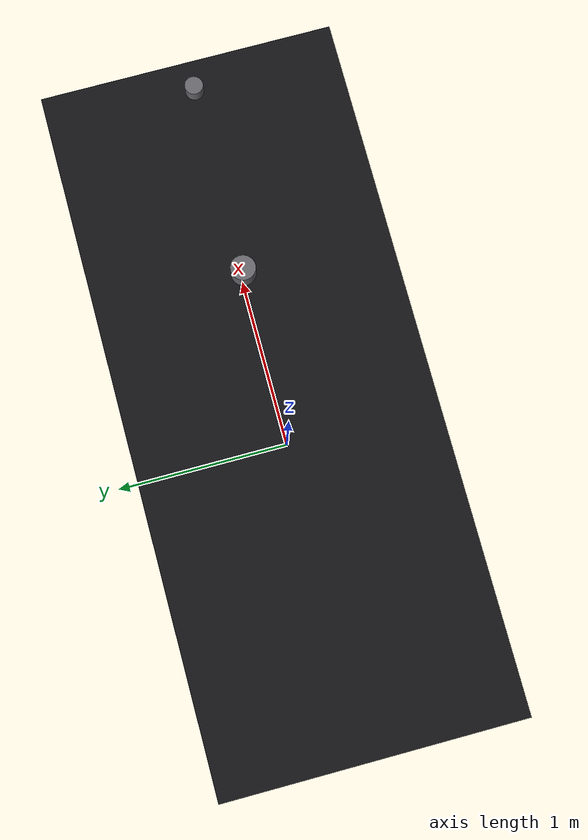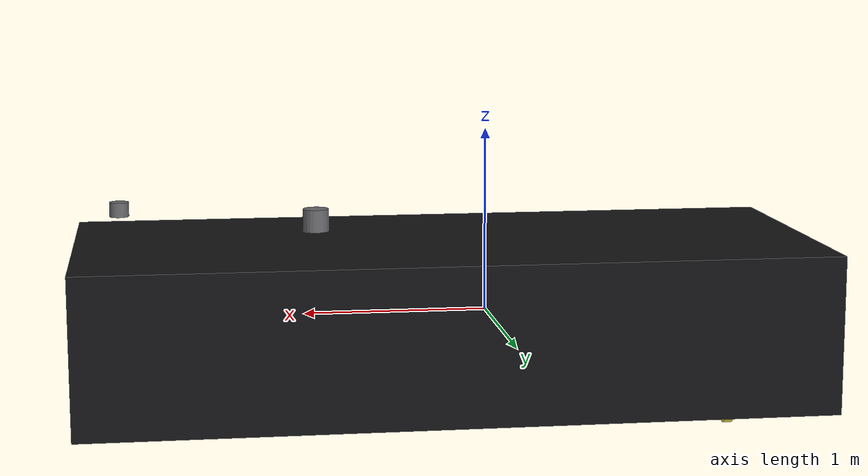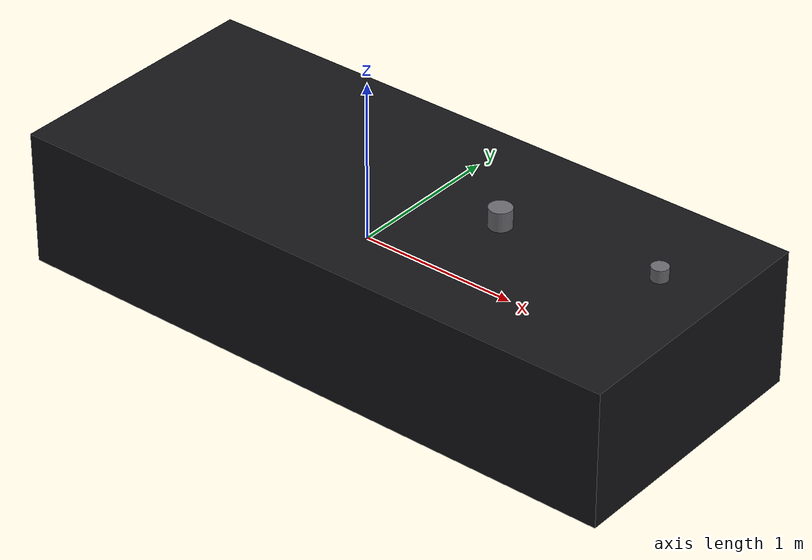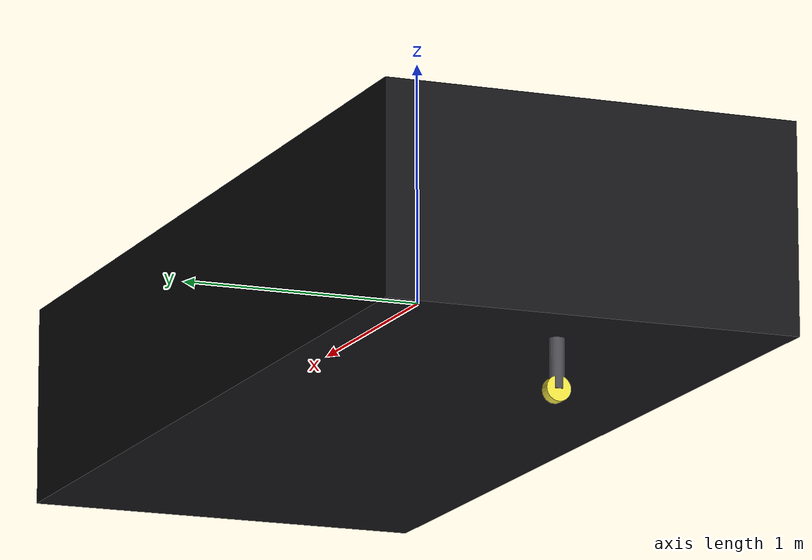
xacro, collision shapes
<?xml version="1.0"?>
<robot xmlns:xacro="http://ros.org/wiki/xacro" name="my_boat">

  <!-- Namespace used for the link name and plugin link references. Keep the
       spawn -name equal to this so USVWind's scoped link match works. -->
  <xacro:arg name="namespace" default="my_boat"/>
  <xacro:property name="namespace" value="$(arg namespace)" scope="global"/>

  <xacro:arg name="d1"   default="1.40"/>
  <xacro:arg name="d2"   default="0.90"/>
  <xacro:arg name="d3"   default="1.40"/>
  <xacro:arg name="p1_y" default="0.00"/>
  <xacro:property name="d1"   value="$(arg d1)"   scope="global"/>
  <xacro:property name="d2"   value="$(arg d2)"   scope="global"/>
  <xacro:property name="d3"   value="$(arg d3)"   scope="global"/>
  <xacro:property name="p1_y" value="$(arg p1_y)" scope="global"/>

  <!-- Bring in the boat + marine plugins + v2 propulsion macro, instantiate. -->
  <xacro:include filename="$(find my_boat_gazebo)/urdf/my_boat_gazebo_v2.xacro"/>
  <xacro:my_boat_gazebo_v2/>

  <!-- === TF / state publishing (identical to v1) === -->
  <gazebo>
    <plugin filename="libgz-sim-pose-publisher-system.so"
            name="gz::sim::systems::PosePublisher">
      <publish_link_pose>false</publish_link_pose>
      <publish_sensor_pose>false</publish_sensor_pose>
      <publish_collision_pose>false</publish_collision_pose>
      <publish_visual_pose>false</publish_visual_pose>
      <publish_nested_model_pose>false</publish_nested_model_pose>
      <publish_model_pose>true</publish_model_pose>
      <use_pose_vector_msg>true</use_pose_vector_msg>
      <static_publisher>false</static_publisher>
      <static_update_frequency>1</static_update_frequency>
    </plugin>

    <plugin filename="libgz-sim-joint-state-publisher-system.so"
            name="gz::sim::systems::JointStatePublisher">
    </plugin>
  </gazebo>

</robot>

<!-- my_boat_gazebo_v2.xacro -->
<robot xmlns:xacro="http://ros.org/wiki/xacro">
  <!-- Marine dynamics macro (Surface + SimpleHydrodynamics). -->
  <xacro:include filename="$(find my_boat_gazebo)/urdf/dynamics/my_boat_gazebo_dynamics_plugin.xacro"/>
  <!-- Propulsion arrangement v2: T1/T2 centreline laterals + P1 stern prop. -->
  <xacro:include filename="$(find my_boat_gazebo)/urdf/thrusters/my_boat_thruster_layout_v2.xacro"/>
  <!-- IMU + GPS + LiDAR + camera sensor stack (identical to v1). -->
  <xacro:include filename="$(find my_boat_gazebo)/urdf/sensors/my_boat_sensors.xacro"/>

  <xacro:macro name="my_boat_gazebo_v2">
    <!-- The pure rigid body (CG-centred base_link, mesh, inertia). -->
    <xacro:include filename="$(find my_boat_description)/urdf/my_boat_base.urdf.xacro"/>
    <!-- Attach buoyancy + hydrodynamics. -->
    <xacro:usv_dynamics_gazebo name="my_boat_dynamics_plugin"/>
    <!-- IMU + GPS + LiDAR + camera (via fixed joints). -->
    <xacro:my_boat_sensors/>
  </xacro:macro>
</robot>

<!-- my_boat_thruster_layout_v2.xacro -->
<robot xmlns:xacro="http://ros.org/wiki/xacro" name="my_boat_thruster_layout_v2">

  <xacro:include filename="$(find my_boat_gazebo)/urdf/thrusters/my_boat_engine_v2.xacro"/>
  <!-- Physics macros are shared with v1 (thruster_force); steering_actuator is
       defined there too but deliberately NOT used — v2 has nothing to steer. -->
  <xacro:include filename="$(find my_boat_gazebo)/urdf/thrusters/my_boat_thruster_config.xacro"/>

  <!-- ===================== Mounting depths (base_link / CG frame) ========= -->
  <!-- Lateral thrusters: 0.23 m below the CG, same as the v1 bow tunnels. -->
  <xacro:property name="lat_z"        value="-0.23"/>
  <!-- Stern leg: hull mount 0.25 m below the CG, 0.40 m strut -> prop z=-0.65. -->
  <xacro:property name="p1_mount_z"   value="-0.25"/>
  <xacro:property name="p1_prop_drop" value="0.40"/>

  <!-- ===================== Hardware thrust limits (N) ===================== -->
  <xacro:property name="lat_max_thrust"   value="98.0"/>   <!-- APISQUEEN U92 Pro, 10 kgf -->
  <xacro:property name="stern_max_thrust" value="632.0"/>  <!-- Torqeedo Cruise 3.0 R -->

  <!-- ======================= T1: forward lateral ========================== -->
  <!-- yaw +90 deg: positive command thrusts +Y (port); lever +d1 -> +N -->
  <xacro:lateral_thruster prefix="T1" x="${d1}" y="0.0" z="${lat_z}" yaw="1.5708"/>
  <xacro:thruster_force name="T1" joint_name="T1_propeller_joint"
                        max_thrust="${lat_max_thrust}"/>

  <!-- ========================= T2: aft lateral ============================ -->
  <!-- yaw +90 deg: positive command thrusts +Y (port); lever -d2 -> -N -->
  <xacro:lateral_thruster prefix="T2" x="${-d2}" y="0.0" z="${lat_z}" yaw="1.5708"/>
  <xacro:thruster_force name="T2" joint_name="T2_propeller_joint"
                        max_thrust="${lat_max_thrust}"/>

  <!-- ==================== P1: fixed stern propeller ======================= -->
  <!-- yaw 180 deg: prop faces -X so positive command thrusts +X (forward).
       No steering joint and therefore no steering_actuator plugin. -->
  <xacro:stern_propeller prefix="P1" x="${-d3}" y="${p1_y}" z="${p1_mount_z}"
                         yaw="3.1416" prop_drop="${p1_prop_drop}"/>
  <xacro:thruster_force name="P1" joint_name="P1_propeller_joint"
                        max_thrust="${stern_max_thrust}"/>

</robot>

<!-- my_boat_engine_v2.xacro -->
<robot xmlns:xacro="http://ros.org/wiki/xacro" name="my_boat_engine_v2">

  <xacro:macro name="lateral_thruster" params="prefix x y z yaw">

    <!-- Propeller: visual = reused WAM-V propeller.dae; spins about local X and
         the plugin applies thrust along that same axis. -->
    <link name="${namespace}/${prefix}_propeller_link">
      <visual>
        <!-- propeller.dae faces / spins about its local X (no extra rotation) -->
        <origin xyz="0 0 0" rpy="0 0 0"/>
        <geometry>
          <mesh filename="model://propeller/mesh/propeller.dae" scale="0.42 0.42 0.42"/>
        </geometry>
      </visual>
      <collision name="${prefix}_propeller_collision">
        <!-- thin disc whose normal is local X (cylinder axis laid along X) -->
        <origin xyz="0 0 0" rpy="0 1.5708 0"/>
        <geometry>
          <cylinder radius="0.06" length="0.04"/>
        </geometry>
      </collision>
      <inertial>
        <!-- whole U92 Pro pod, lumped into the propeller: m=2.5 kg,
             solid cylinder r=0.06, L=0.10 about its own (X) axis -->
        <mass value="2.5"/>
        <inertia ixx="0.0045" iyy="0.00433" izz="0.00433"
                 ixy="0.0" ixz="0.0" iyz="0.0"/>
      </inertial>
    </link>

    <!-- base_link -> propeller (continuous). Origin = station + mount yaw; axis
         is local X (= the aimed lateral thrust direction). -->
    <joint name="${namespace}/${prefix}_propeller_joint" type="continuous">
      <origin xyz="${x} ${y} ${z}" rpy="0 0 ${yaw}"/>
      <axis xyz="1 0 0"/>
      <parent link="${namespace}/base_link"/>
      <child  link="${namespace}/${prefix}_propeller_link"/>
      <limit effort="100" velocity="200"/>
      <dynamics friction="0.0" damping="0.01"/>
    </joint>

  </xacro:macro>

  <xacro:macro name="stern_propeller" params="prefix x y z yaw:='3.1416' prop_drop:='0.40'">

    <!-- Fixed leg: a single vertical shaft CYLINDER (dia 0.05 m) from the hull
         mount down to the propeller depth. Rigid — nothing rotates it. -->
    <link name="${namespace}/${prefix}_strut_link">
      <visual name="${prefix}_strut_visual">
        <origin xyz="0 0 ${-prop_drop/2}" rpy="0 0 0"/>
        <geometry>
          <cylinder radius="0.025" length="${prop_drop}"/>
        </geometry>
        <material name="strut_grey"><color rgba="0.3 0.3 0.32 1.0"/></material>
      </visual>
      <collision name="${prefix}_strut_collision">
        <origin xyz="0 0 ${-prop_drop/2}" rpy="0 0 0"/>
        <geometry>
          <cylinder radius="0.03" length="${prop_drop}"/>
        </geometry>
      </collision>
      <inertial>
        <!-- leg ~12 kg (bracket + leg + motor), centred ~halfway down -->
        <origin xyz="0 0 ${-prop_drop/2}" rpy="0 0 0"/>
        <mass value="12.0"/>
        <inertia ixx="0.6" iyy="0.6" izz="0.05" ixy="0" ixz="0" iyz="0"/>
      </inertial>
    </link>

    <link name="${namespace}/${prefix}_propeller_link">
      <visual>
        <origin xyz="0 0 0" rpy="0 0 0"/>
        <geometry>
          <mesh filename="model://propeller/mesh/propeller.dae" scale="0.42 0.42 0.42"/>
        </geometry>
      </visual>
      <collision name="${prefix}_propeller_collision">
        <!-- thin disc, normal along local X (cylinder axis laid along X) -->
        <origin xyz="0 0 0" rpy="0 1.5708 0"/>
        <geometry>
          <!-- Torqeedo prop, dia 0.10 m -->
          <cylinder radius="0.05" length="0.05"/>
        </geometry>
      </collision>
      <inertial>
        <!-- m=1.0 kg, solid cylinder r=0.05, L=0.05 about its own (X) axis -->
        <mass value="1.0"/>
        <inertia ixx="0.00125" iyy="0.000833" izz="0.000833"
                 ixy="0.0" ixz="0.0" iyz="0.0"/>
      </inertial>
    </link>

    <!-- base_link -> leg (RIGID). This is where the v1 steering joint used to
         be; in v2 it is welded. Aimed by 'yaw' so the prop faces aft. -->
    <joint name="${namespace}/${prefix}_mount_joint" type="fixed">
      <origin xyz="${x} ${y} ${z}" rpy="0 0 ${yaw}"/>
      <parent link="${namespace}/base_link"/>
      <child  link="${namespace}/${prefix}_strut_link"/>
    </joint>

    <joint name="${namespace}/${prefix}_propeller_joint" type="continuous">
      <origin xyz="0 0 ${-prop_drop}" rpy="0 0 0"/>
      <axis xyz="-1 0 0"/>
      <parent link="${namespace}/${prefix}_strut_link"/>
      <child  link="${namespace}/${prefix}_propeller_link"/>
      <limit effort="500" velocity="200"/>
      <dynamics friction="0.0" damping="0.01"/>
    </joint>

  </xacro:macro>

</robot>

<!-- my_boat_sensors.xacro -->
<robot xmlns:xacro="http://ros.org/wiki/xacro" name="my_boat_sensors">

  <xacro:macro name="zero_noise">
    <noise type="gaussian">
      <mean>0.0</mean>
      <stddev>0.0</stddev>
      <bias_mean>0.0</bias_mean>
      <bias_stddev>0.0</bias_stddev>
      <dynamic_bias_stddev>0.0</dynamic_bias_stddev>
      <dynamic_bias_correlation_time>0.0</dynamic_bias_correlation_time>
      <precision>0.0</precision>
    </noise>
  </xacro:macro>

  <xacro:property name="m_per_deg"    value="111320.0"/>   <!-- metres per degree of latitude (GPS sets only) -->
  <xacro:property name="imu_bias_tau" value="500.0"/>      <!-- [s] IMU bias correlation time; only has an effect when a set with non-zero dyn_bias is active (set to 1000 for set A) -->

  <xacro:property name="gyro_stddev"   value="1.4544e-4"/>
  <xacro:property name="gyro_bias"     value="2.4241e-6"/>
  <xacro:property name="gyro_dyn_bias" value="1.0841e-7"/>
  <xacro:property name="acc_stddev"    value="5.0000e-3"/>
  <xacro:property name="acc_bias"      value="1.9613e-4"/>
  <xacro:property name="acc_dyn_bias"  value="8.7713e-6"/>
  <xacro:property name="gps_pos_h"     value="${0.010/m_per_deg}"/>
  <xacro:property name="gps_pos_v"     value="0.020"/>
  <xacro:property name="gps_vel_h"     value="0.030"/>
  <xacro:property name="gps_vel_v"     value="0.050"/>

  <xacro:macro name="gauss_noise"
               params="stddev:=0.0 bias:=0.0 dyn_bias:=0.0 dyn_tau:=0.0 prec:=0.0 mean:=0.0">
    <noise type="gaussian">
      <mean>${mean}</mean>
      <stddev>${stddev}</stddev>
      <bias_mean>0.0</bias_mean>
      <bias_stddev>${bias}</bias_stddev>
      <dynamic_bias_stddev>${dyn_bias}</dynamic_bias_stddev>
      <dynamic_bias_correlation_time>${dyn_tau}</dynamic_bias_correlation_time>
      <precision>${prec}</precision>
    </noise>
  </xacro:macro>

  <xacro:macro name="my_boat_imu" params="name:=imu x y z R:=0 P:=0 Y:=0 update_rate:=100">
    <link name="${namespace}/${name}_link">
      <visual name="${name}_visual">
        <geometry>
          <box size="0.05 0.025 0.005"/>
        </geometry>
        <material name="${name}_material">
          <color rgba="0.45 0.45 0.47 1.0"/>
        </material>
      </visual>
      <collision name="${name}_collision">
        <geometry>
          <box size="0.05 0.025 0.005"/>
        </geometry>
      </collision>
      <inertial>
        <mass value="0.1"/>
        <inertia ixx="0.00000542" ixy="0.0" ixz="0.0"
                 iyy="0.00002104" iyz="0.0" izz="0.00002604"/>
      </inertial>
    </link>

    <joint name="${namespace}/${name}_joint" type="fixed">
      <origin xyz="${x} ${y} ${z}" rpy="${R} ${P} ${Y}"/>
      <parent link="${namespace}/base_link"/>
      <child  link="${namespace}/${name}_link"/>
    </joint>

    <gazebo reference="${namespace}/${name}_link">
      <sensor name="${name}_sensor" type="imu">
        <always_on>1</always_on>
        <update_rate>${update_rate}</update_rate>
        <topic>/${namespace}/${name}/data</topic>
        <gz_frame_id>${namespace}/${name}_link</gz_frame_id>
        <imu>
          <orientation_reference_frame>
            <localization>ENU</localization>
          </orientation_reference_frame>
          <angular_velocity>
            <x><xacro:gauss_noise stddev="${gyro_stddev}" bias="${gyro_bias}" dyn_bias="${gyro_dyn_bias}" dyn_tau="${imu_bias_tau}"/></x>
            <y><xacro:gauss_noise stddev="${gyro_stddev}" bias="${gyro_bias}" dyn_bias="${gyro_dyn_bias}" dyn_tau="${imu_bias_tau}"/></y>
            <z><xacro:gauss_noise stddev="${gyro_stddev}" bias="${gyro_bias}" dyn_bias="${gyro_dyn_bias}" dyn_tau="${imu_bias_tau}"/></z>
          </angular_velocity>
          <linear_acceleration>
            <x><xacro:gauss_noise stddev="${acc_stddev}" bias="${acc_bias}" dyn_bias="${acc_dyn_bias}" dyn_tau="${imu_bias_tau}"/></x>
            <y><xacro:gauss_noise stddev="${acc_stddev}" bias="${acc_bias}" dyn_bias="${acc_dyn_bias}" dyn_tau="${imu_bias_tau}"/></y>
            <z><xacro:gauss_noise stddev="${acc_stddev}" bias="${acc_bias}" dyn_bias="${acc_dyn_bias}" dyn_tau="${imu_bias_tau}"/></z>
          </linear_acceleration>
        </imu>
      </sensor>
    </gazebo>
  </xacro:macro>

  <xacro:macro name="my_boat_gps" params="name:=gps x y z R:=0 P:=0 Y:=0 update_rate:=10">
    <link name="${namespace}/${name}_link">
      <visual name="${name}_base_visual">
        <origin xyz="0 0 0.025" rpy="0 0 0"/>
        <geometry>
          <cylinder length="0.05" radius="0.015"/>
        </geometry>
        <material name="${name}_material">
          <color rgba="0.42 0.42 0.44 1.0"/>
        </material>
      </visual>
      <visual name="${name}_antenna_visual">
        <origin xyz="0 0 0.11" rpy="0 0 0"/>
        <geometry>
          <cylinder length="0.04" radius="0.07"/>
        </geometry>
        <material name="${name}_antenna_material">
          <color rgba="0.72 0.72 0.74 1.0"/>
        </material>
      </visual>
      <collision name="${name}_collision">
        <origin xyz="0 0 0.06" rpy="0 0 0"/>
        <geometry>
          <cylinder length="0.12" radius="0.07"/>
        </geometry>
      </collision>
      <inertial>
        <mass value="1.0"/>
        <inertia ixx="0.006458" ixy="0.0" ixz="0.0"
                 iyy="0.006458" iyz="0.0" izz="0.01125"/>
      </inertial>
    </link>

    <joint name="${namespace}/${name}_joint" type="fixed">
      <origin xyz="${x} ${y} ${z}" rpy="${R} ${P} ${Y}"/>
      <parent link="${namespace}/base_link"/>
      <child  link="${namespace}/${name}_link"/>
    </joint>

    <gazebo reference="${namespace}/${name}_link">
      <sensor name="${name}_sensor" type="navsat">
        <always_on>1</always_on>
        <update_rate>${update_rate}</update_rate>
        <topic>/${namespace}/${name}/fix</topic>
        <!-- Stamp with the link frame (in the TF tree) so navsat_transform can
             apply the antenna offset. Matches the lidar sensor below. -->
        <gz_frame_id>${namespace}/${name}_link</gz_frame_id>
        <navsat>
          <position_sensing>
            <horizontal><xacro:gauss_noise stddev="${gps_pos_h}"/></horizontal>
            <vertical><xacro:gauss_noise stddev="${gps_pos_v}"/></vertical>
          </position_sensing>
          <velocity_sensing>
            <horizontal><xacro:gauss_noise stddev="${gps_vel_h}"/></horizontal>
            <vertical><xacro:gauss_noise stddev="${gps_vel_v}"/></vertical>
          </velocity_sensing>
        </navsat>
      </sensor>
    </gazebo>
  </xacro:macro>

  <xacro:macro name="my_boat_lidar"
               params="name:=lidar x y z R:=0 P:=0 Y:=0 update_rate:=10
                       h_samples:=1800 v_samples:=32
                       h_min:=${-pi} h_max:=${pi}
                       v_min_deg:=-16 v_max_deg:=15
                       min_range:=0.3 max_range:=130 range_res:=0.01">
    <link name="${namespace}/${name}_link">
      <visual name="${name}_visual">
        <geometry>
          <cylinder radius="0.051" length="0.0779"/>  <!-- LSLiDAR C32: Ø102 mm x 77.9 mm -->

        </geometry>
        <material name="${name}_material">
          <color rgba="0.42 0.42 0.44 1.0"/>
        </material>
      </visual>
      <collision name="${name}_collision">
        <geometry>
          <cylinder radius="0.051" length="0.0779"/>  <!-- LSLiDAR C32: Ø102 mm x 77.9 mm -->

        </geometry>
      </collision>
      <inertial>
        <mass value="0.84"/>   <!-- LSLiDAR C32 ~ 0.84 kg -->
        <!-- Solid-cylinder inertia for r=0.051 m, h=0.0779 m, m=0.84 kg:
             Ixx=Iyy=(1/12)m(3r^2+h^2)=0.00097, Izz=(1/2)m r^2=0.00109. -->
        <inertia ixx="0.00097" ixy="0.0" ixz="0.0"
                 iyy="0.00097" iyz="0.0" izz="0.00109"/>
      </inertial>
    </link>

    <joint name="${namespace}/${name}_joint" type="fixed">
      <origin xyz="${x} ${y} ${z}" rpy="${R} ${P} ${Y}"/>
      <parent link="${namespace}/base_link"/>
      <child  link="${namespace}/${name}_link"/>
    </joint>

    <gazebo reference="${namespace}/${name}_link">
      <sensor name="${name}_sensor" type="gpu_lidar">
        <always_on>1</always_on>
        <update_rate>${update_rate}</update_rate>
        <topic>/${namespace}/${name}</topic>
        <gz_frame_id>${namespace}/${name}_link</gz_frame_id>
        <lidar>
          <scan>
            <horizontal>
              <samples>${h_samples}</samples>
              <resolution>1</resolution>
              <min_angle>${h_min}</min_angle>
              <max_angle>${h_max}</max_angle>
            </horizontal>
            <vertical>
              <samples>${v_samples}</samples>
              <resolution>1</resolution>
              <min_angle>${radians(v_min_deg)}</min_angle>
              <max_angle>${radians(v_max_deg)}</max_angle>
            </vertical>
          </scan>
          <range>
            <min>${min_range}</min>
            <max>${max_range}</max>
            <resolution>${range_res}</resolution>
          </range>
          <noise>
            <type>gaussian</type>
            <mean>0.0</mean>
            <stddev>0.0</stddev>
          </noise>
        </lidar>
      </sensor>
    </gazebo>
  </xacro:macro>

  <xacro:macro name="my_boat_camera"
               params="name:=camera parent:=${namespace}/lidar_link
                       x:=0.09635  y:=0.0       z:=-0.05845
                       R:=0        P:=0         Y:=0
                       update_rate:=30">
    <link name="${namespace}/${name}_link">
      <visual name="${name}_visual">
        <geometry>
          <box size="0.0273 0.082 0.025"/>  <!-- measured: X 2.73 x Y 8.2 x Z 2.5 cm -->
        </geometry>
        <material name="${name}_material">
          <color rgba="0.45 0.45 0.47 1.0"/>
        </material>
      </visual>
      <collision name="${name}_collision">
        <geometry>
          <box size="0.0273 0.082 0.025"/>  <!-- measured: X 2.73 x Y 8.2 x Z 2.5 cm -->
        </geometry>
      </collision>
      <inertial>
        <mass value="0.05"/>
        <!-- Solid-box inertia for 0.0273 x 0.082 x 0.025 m, m=0.05 kg. -->
        <inertia ixx="3.06e-5" ixy="0.0" ixz="0.0"
                 iyy="5.71e-6" iyz="0.0" izz="3.11e-5"/>
      </inertial>
    </link>

    <!-- Mounted ON the lidar (parent = lidar_link); origin = measured offset. -->
    <joint name="${namespace}/${name}_joint" type="fixed">
      <origin xyz="${x} ${y} ${z}" rpy="${R} ${P} ${Y}"/>
      <parent link="${parent}"/>
      <child  link="${namespace}/${name}_link"/>
    </joint>

    <!-- ROS optical frame (x-right, y-down, z-fwd) for camera_info / projection. -->
    <link name="${namespace}/${name}_optical_link"/>
    <joint name="${namespace}/${name}_optical_joint" type="fixed">
      <origin xyz="0 0 0" rpy="${-pi/2} 0 ${-pi/2}"/>
      <parent link="${namespace}/${name}_link"/>
      <child  link="${namespace}/${name}_optical_link"/>
    </joint>

    <gazebo reference="${namespace}/${name}_link">
      <sensor name="${name}_sensor" type="camera">
        <always_on>1</always_on>
        <update_rate>${update_rate}</update_rate>
        <topic>/${namespace}/${name}</topic>
        <!-- Stamp image / camera_info in the optical frame (ROS convention). -->
        <gz_frame_id>${namespace}/${name}_optical_link</gz_frame_id>
        <camera>
          <horizontal_fov>1.191581</horizontal_fov>   <!-- 2*atan(W/2fx), W=640 fx=471.99 -->
          <image>
            <width>640</width>
            <height>480</height>
            <format>R8G8B8</format>
          </image>
          <clip>
            <near>0.05</near>
            <far>300.0</far>
          </clip>
          <!-- plumb_bob / Brown-Conrady distortion (intrenstic_param.txt).
               center = (cx/W, cy/H). -->
          <distortion>
            <k1>0.095652</k1>
            <k2>-0.140237</k2>
            <k3>0.0</k3>
            <p1>0.003701</p1>
            <p2>0.002291</p2>
            <center>0.49990 0.49686</center>
          </distortion>
          <!-- Exact pinhole intrinsics (gz honours these for non-square pixels
               and writes them into the published camera_info). -->
          <lens>
            <intrinsics>
              <fx>471.993854</fx>
              <fy>475.737131</fy>
              <cx>319.937646</cx>
              <cy>238.490867</cy>
              <s>0.0</s>
            </intrinsics>
          </lens>
        </camera>
      </sensor>
    </gazebo>
  </xacro:macro>

  <xacro:macro name="my_boat_sensors">
    <xacro:my_boat_imu   name="imu"   x="1.30" y="0.08" z="-0.07"/>
    <xacro:my_boat_gps   name="gps"   x="0.93" y="0.00" z="0.46"/>
    <!-- z = 0.59995: lidar BOTTOM measured 56.1 cm above base_link/COM,
         + half the C32 height (0.0779/2 = 0.03895) to the cylinder centre. -->
    <xacro:my_boat_lidar name="lidar" x="1.98" y="0.00" z="0.59995"/>
    <!-- Camera is placed w.r.t the lidar (parent = lidar_link), so it must be
         instantiated after the lidar. -->
    <xacro:my_boat_camera name="camera"/>
  </xacro:macro>

</robot>

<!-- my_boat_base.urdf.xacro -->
<robot xmlns:xacro="http://ros.org/wiki/xacro" name="my_boat">

  <!-- Namespace arg (kept for parity with wamv_base.urdf.xacro). -->
  <xacro:arg name="namespace" default="my_boat"/>
  <xacro:property name="namespace" value="$(arg namespace)" scope="global"/>

  <xacro:property name="boat_mass" value="420.0"/>          <!-- kg -->

  <!-- Centre of gravity in the CAD/STL frame (millimetres). base_link is
       placed here. Defaults = hull volume centroid (Y matches the report). -->
  <xacro:property name="cg_x_mm" value="924.5"/>            <!-- CAD X lateral      -->
  <xacro:property name="cg_y_mm" value="491.6"/>            <!-- CAD Y vertical     -->
  <xacro:property name="cg_z_mm" value="2314.5"/>           <!-- CAD Z longitudinal -->

  <xacro:property name="mesh_scale" value="0.001"/>
  <xacro:property name="mesh_rpy"   value="1.5708 0 -1.5708"/>  <!-- +Rz(pi) flip -->
  <!-- xyz = Rz(pi) * (-R*scale*CG) -> ROS x & y negated, z unchanged -->
  <xacro:property name="mesh_off_x" value="${ cg_z_mm*mesh_scale}"/>
  <xacro:property name="mesh_off_y" value="${ cg_x_mm*mesh_scale}"/>
  <xacro:property name="mesh_off_z" value="${-cg_y_mm*mesh_scale}"/>

  <xacro:property name="ixx" value="100.22"/>
  <xacro:property name="iyy" value="606.43"/>
  <xacro:property name="izz" value="652.79"/>
  <xacro:property name="ixy" value="0.0"/>
  <xacro:property name="ixz" value="5.48"/>
  <xacro:property name="iyz" value="0.0"/>

  <link name="${namespace}/base_link">

    <!-- Inertial: CoM at the base_link origin (= CG). -->
    <inertial>
      <origin xyz="0 0 0" rpy="0 0 0"/>
      <mass value="${boat_mass}"/>
      <inertia ixx="${ixx}" ixy="${ixy}" ixz="${ixz}"
                            iyy="${iyy}" iyz="${iyz}"
                                         izz="${izz}"/>
    </inertial>

    <!-- Visual: the imported STL hull, scaled, rotated and CG-aligned. -->
    <visual name="hull_visual">
      <origin xyz="${mesh_off_x} ${mesh_off_y} ${mesh_off_z}" rpy="${mesh_rpy}"/>
      <!-- Resolved via GZ_SIM_RESOURCE_PATH (description hook registers
           share/my_boat_description/models). -->
      <geometry>
        <mesh filename="model://my_boat/mesh/my_boat_hull.stl"
              scale="${mesh_scale} ${mesh_scale} ${mesh_scale}"/>
      </geometry>
      <!-- STL carries no colour; give the hull a near-black material.
           0.08 rather than 0.0: pure black renders flat and dead on
           video, this still reads as black but catches highlights. -->
      <material name="hull_black">
        <color rgba="0.08 0.08 0.09 1.0"/>
      </material>
    </visual>

    <collision name="hull_collision">
      <origin xyz="0.23 0.0 -0.025" rpy="0 0 0"/>
      <geometry>
        <box size="4.0 1.7 0.85"/>
      </geometry>
    </collision>

  </link>

  <!-- gz material so the hull also renders coloured in Gazebo. -->
  <gazebo reference="${namespace}/base_link">
    <visual>
      <material>
        <ambient>0.06 0.06 0.07 1.0</ambient>
        <diffuse>0.08 0.08 0.09 1.0</diffuse>
        <specular>0.35 0.35 0.37 1.0</specular>
      </material>
    </visual>
  </gazebo>

  <!-- Opt the whole model in to Gazebo's wind system (USVWind lives in the
       world and only pushes links/models that enable wind). Mirrors WAM-V. -->
  <gazebo>
    <enable_wind>true</enable_wind>
  </gazebo>

</robot>
